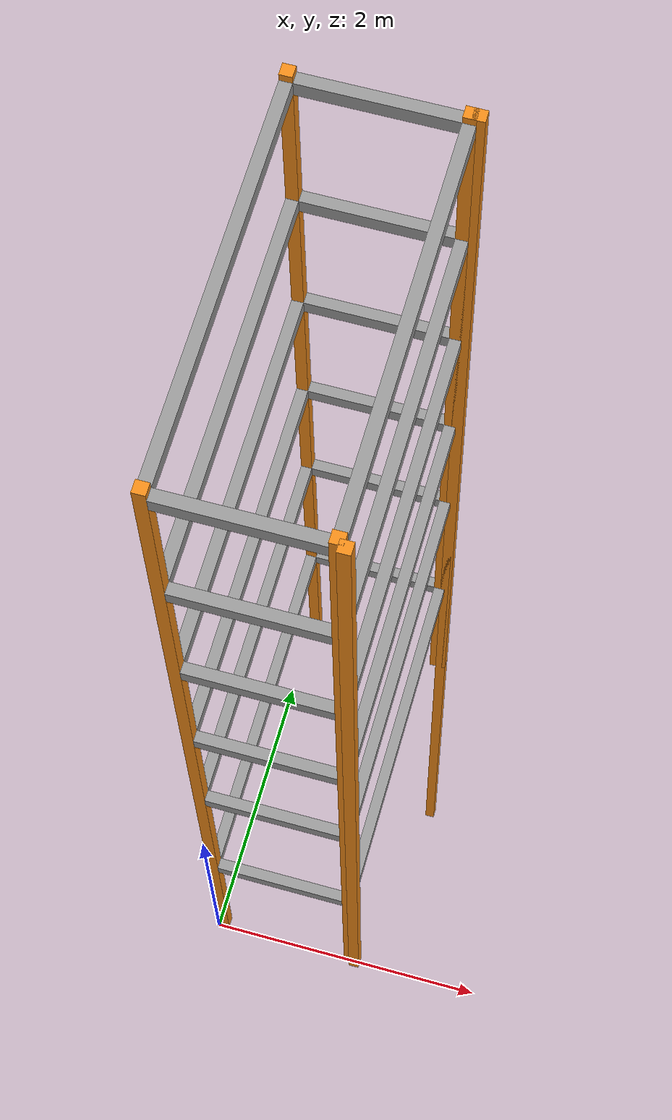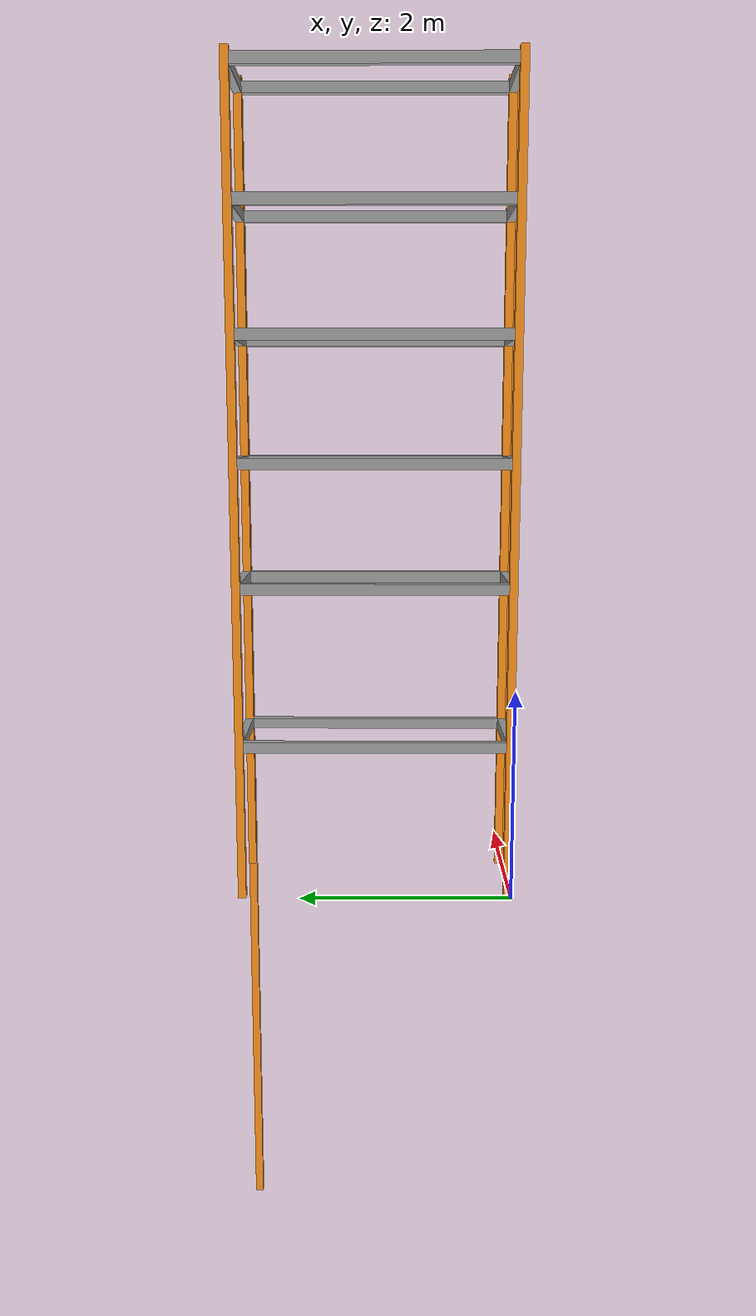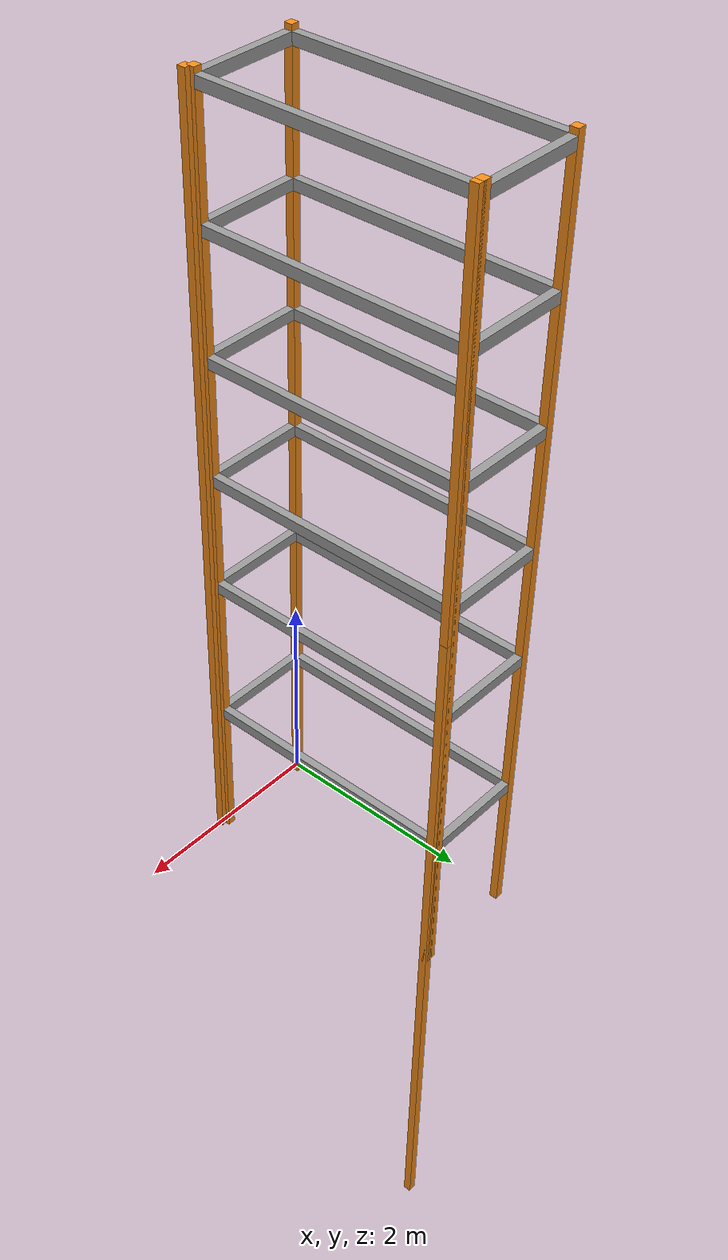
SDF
<?xml version="1.0" ?>
<sdf version="1.6">

  <model name="configurable_pallet_rack">
    <static>true</static>

    <link name="upright_front_right">

      <visual name="upright_front_right_visual">
        <pose>0.0381 0.0381 3.7592 0 0 0</pose>
        <geometry>
          <box>
            <size>0.0762 0.0762 7.5184</size>
          </box>
        </geometry>
        <material><script><name>Gazebo/Orange</name></script></material>
     </visual>

     <collision name="upright_front_right_collision">
        <pose>0.0381 0.0381 3.7592 0 0 0</pose>
        <geometry>
          <box>
             <size>0.0762 0.0762 7.5184</size>
          </box>
        </geometry>
				<surface>
        	<friction>
          	<ode>
            	<mu>100.0</mu>
            	<mu2>100.0</mu2>
          	</ode>
        	</friction>
      	</surface>
    </collision>

    </link>

    <link name="upright_front_left">

      <visual name="upright_front_left_visual">
        <pose>0.0381 2.5527 3.7592 0 0 0</pose>
        <geometry>
          <box>
            <size>0.0762 0.0762 7.5184</size>
          </box>
        </geometry>
        <material><script><name>Gazebo/Orange</name></script></material>
     </visual>

     <collision name="upright_front_left_collision">
        <pose>0.0381 2.5527 3.7592 0 0 0</pose>
        <geometry>
          <box>
             <size>0.0762 0.0762 7.5184</size>
          </box>
        </geometry>
				<surface>
        	<friction>
          	<ode>
            	<mu>100.0</mu>
            	<mu2>100.0</mu2>
          	</ode>
        	</friction>
      	</surface>
    </collision>

    </link>

<visual name="visual">
	<pose>0.0381 1.2954 4.064 0 0 0</pose>
        <geometry>
          <mesh>
            <uri>model://tote.dae</uri>
            <!-- Replace "your_mesh.dae" with the actual name of your mesh file -->
          </mesh>
        </geometry>
      </visual>

<geometry>
    <mesh><uri>model://tote.dae</uri></mesh>
</geometry>

    <link name="upright_rear_right">

      <visual name="upright_rear_right_visual">
        <pose>1.0287 0.0381 3.7592 0 0 0</pose>
        <geometry>
          <box>
            <size>0.0762 0.0762 7.5184</size>
          </box>
        </geometry>
        <material><script><name>Gazebo/Orange</name></script></material>
     </visual>

     <collision name="upright_rear_right_collision">
        <pose>1.0287 0.0381 3.7592 0 0 0</pose>
        <geometry>
          <box>
             <size>0.0762 0.0762 7.5184</size>
          </box>
        </geometry>
				<surface>
        	<friction>
          	<ode>
            	<mu>100.0</mu>
            	<mu2>100.0</mu2>
          	</ode>
        	</friction>
      	</surface>
    </collision>

    </link>

    <link name="upright_rear_left">

      <visual name="upright_rear_left_visual">
        <pose>1.0287 2.5527 3.7592 0 0 0</pose>
        <geometry>
          <box>
            <size>0.0762 0.0762 7.5184</size>
          </box>
        </geometry>
        <material><script><name>Gazebo/Orange</name></script></material>
     </visual>

     <collision name="upright_rear_left_collision">
        <pose>1.0287 2.5527 3.7592 0 0 0</pose>
        <geometry>
          <box>
             <size>0.0762 0.0762 7.5184</size>
          </box>
        </geometry>
				<surface>
        	<friction>
          	<ode>
            	<mu>100.0</mu>
            	<mu2>100.0</mu2>
          	</ode>
        	</friction>
      	</surface>
    </collision>

    </link>

     <link name="upright_front_right">
     <visual name="upright_front_right_visual">
        <pose>0.0381 0.0381 3.7592 0 0 0</pose>
        <geometry>
          <box>
            <size>0.0762 0.0762 7.5184</size>
          </box>
        </geometry>
        <material><script><name>Gazebo/Orange</name></script></material>
     </visual>

     <collision name="upright_front_right_collision">
        <pose>0.0381 0.0381 3.7592 0 0 0</pose>
        <geometry>
          <box>
             <size>0.0762 0.0762 7.5184</size>
          </box>
        </geometry>
				<surface>
        	<friction>
          	<ode>
            	<mu>100.0</mu>
            	<mu2>100.0</mu2>
          	</ode>
        	</friction>
      	</surface>
    </collision>

    </link>

  <link name="upright_front_right_parallel">

     </link>
  <link name="upright_front_left_parallel">

  <visual name="upright_front_left_visual">
        <pose>1.0762 2.5527 0 0 0 0</pose>
        <geometry>
          <box>
            <size>0.0762 0.0762 7.5184</size>
          </box>
        </geometry>
        <material><script><name>Gazebo/Orange</name></script></material>
     </visual>

     <collision name="upright_front_left_collision">
        <pose>1.0762 2.5527 0 0 0 0</pose>
        <geometry>
          <box>
             <size>0.0762 0.0762 7.5184</size>
          </box>
        </geometry>
				<surface>
        	<friction>
          	<ode>
            	<mu>100.0</mu>
            	<mu2>100.0</mu2>
          	</ode>
        	</friction>
      	</surface>
    </collision>

    </link>

  <link name="upright_rear_right_parallel">

  <visual name="upright_rear_right_visual">
        <pose>1.0762 0 3.7592 0 0 0</pose>
        <geometry>
          <box>
            <size>0.0762 0.0762 7.5184</size>
          </box>
        </geometry>
        <material><script><name>Gazebo/Orange</name></script></material>
     </visual>

     <collision name="upright_rear_right_collision">
        <pose>1.0762 0 3.7592 0 0 0</pose>
        <geometry>
          <box>
             <size>0.0762 0.0762 7.5184</size>
          </box>
        </geometry>
				<surface>
        	<friction>
          	<ode>
            	<mu>100.0</mu>
            	<mu2>100.0</mu2>
          	</ode>
        	</friction>
      	</surface>
    </collision>

    </link>
  <link name="upright_rear_left_parallel">

  <visual name="upright_rear_left_visual">
        <pose>1.0762 2.5527 3.7592 0 0 0</pose>
        <geometry>
          <box>
            <size>0.0762 0.0762 7.5184</size>
          </box>
        </geometry>
        <material><script><name>Gazebo/Orange</name></script></material>
     </visual>

     <collision name="upright_rear_left_collision">
        <pose>1.0762 2.5527 3.7592 0 0 0</pose>
        <geometry>
          <box>
             <size>0.0762 0.0762 7.5184</size>
          </box>
        </geometry>
				<surface>
        	<friction>
          	<ode>
            	<mu>100.0</mu>
            	<mu2>100.0</mu2>
          	</ode>
        	</friction>
      	</surface>
    </collision>

    </link>

    <link name="shelf_0_front_crossbar">

      <visual name="shelf_0_front_crossbar_visual">
        <pose>0.0381 1.2954 1.4732 0 0 0</pose>
        <geometry>
          <box>
            <size>0.0762 2.4384 0.1016</size>
          </box>
        </geometry>
        <material><script><name>Gazebo/Gray</name></script></material>
     </visual>

    <visual name="shelf_0_rear_crossbar_visual">
      <pose>1.0287 1.2954 1.4732 0 0 0</pose>
      <geometry>
        <box>
          <size>0.0762 2.4384 0.1016</size>
        </box>
      </geometry>
      <material><script><name>Gazebo/Gray</name></script></material>
    </visual>

    <visual name="shelf_0_right_crossbar_visual">
      <pose>0.5334 0.0381 1.4732 0 0 0</pose>
      <geometry>
        <box>
          <size>0.9144 0.0762 0.1016</size>
        </box>
      </geometry>
      <material><script><name>Gazebo/Gray</name></script></material>
    </visual>

    <visual name="shelf_0_left_crossbar_visual">
      <pose>0.5334 2.5527 1.4732 0 0 0</pose>
      <geometry>
        <box>
          <size>0.9144 0.0762 0.1016</size>
        </box>
      </geometry>
      <material><script><name>Gazebo/Gray</name></script></material>
    </visual>

     <collision name="shelf_0_collision">
        <pose>0.5334 1.2954 1.4732 0 0 0</pose>
        <geometry>
          <box>
            <!-- Solid collision -->
             <size>1.0668 2.4384 0.1016</size>
          </box>
        </geometry>
				<surface>
        	<friction>
          	<ode>
            	<mu>100.0</mu>
            	<mu2>100.0</mu2>
          	</ode>
        	</friction>
      	</surface>
    </collision>

    </link>

    <link name="shelf_1_front_crossbar">

      <visual name="shelf_1_front_crossbar_visual">
        <pose>0.0381 1.2954 2.9464 0 0 0</pose>
        <geometry>
          <box>
            <size>0.0762 2.4384 0.1016</size>
          </box>
        </geometry>
        <material><script><name>Gazebo/Gray</name></script></material>
     </visual>

    <visual name="shelf_1_rear_crossbar_visual">
      <pose>1.0287 1.2954 2.9464 0 0 0</pose>
      <geometry>
        <box>
          <size>0.0762 2.4384 0.1016</size>
        </box>
      </geometry>
      <material><script><name>Gazebo/Gray</name></script></material>
    </visual>

    <visual name="shelf_1_right_crossbar_visual">
      <pose>0.5334 0.0381 2.9464 0 0 0</pose>
      <geometry>
        <box>
          <size>0.9144 0.0762 0.1016</size>
        </box>
      </geometry>
      <material><script><name>Gazebo/Gray</name></script></material>
    </visual>

    <visual name="shelf_1_left_crossbar_visual">
      <pose>0.5334 2.5527 2.9464 0 0 0</pose>
      <geometry>
        <box>
          <size>0.9144 0.0762 0.1016</size>
        </box>
      </geometry>
      <material><script><name>Gazebo/Gray</name></script></material>
    </visual>

     <collision name="shelf_1_collision">
        <pose>0.5334 1.2954 2.9464 0 0 0</pose>
        <geometry>
          <box>
            <!-- Solid collision -->
             <size>1.0668 2.4384 0.1016</size>
          </box>
        </geometry>
				<surface>
        	<friction>
          	<ode>
            	<mu>100.0</mu>
            	<mu2>100.0</mu2>
          	</ode>
        	</friction>
      	</surface>
    </collision>

    </link>

    <link name="shelf_2_front_crossbar">

      <visual name="shelf_2_front_crossbar_visual">
        <pose>0.0381 1.2954 4.064 0 0 0</pose>
        <geometry>
          <box>
            <size>0.0762 2.4384 0.1016</size>
          </box>
        </geometry>
        <material><script><name>Gazebo/Gray</name></script></material>
     </visual>

    <visual name="shelf_2_rear_crossbar_visual">
      <pose>1.0287 1.2954 4.064 0 0 0</pose>
      <geometry>
        <box>
          <size>0.0762 2.4384 0.1016</size>
        </box>
      </geometry>
      <material><script><name>Gazebo/Gray</name></script></material>
    </visual>

    <visual name="shelf_2_right_crossbar_visual">
      <pose>0.5334 0.0381 4.064 0 0 0</pose>
      <geometry>
        <box>
          <size>0.9144 0.0762 0.1016</size>
        </box>
      </geometry>
      <material><script><name>Gazebo/Gray</name></script></material>
    </visual>

    <visual name="shelf_2_left_crossbar_visual">
      <pose>0.5334 2.5527 4.064 0 0 0</pose>
      <geometry>
        <box>
          <size>0.9144 0.0762 0.1016</size>
        </box>
      </geometry>
      <material><script><name>Gazebo/Gray</name></script></material>
    </visual>

     <collision name="shelf_2_collision">
        <pose>0.5334 1.2954 4.064 0 0 0</pose>
        <geometry>
          <box>
            <!-- Solid collision -->
             <size>1.0668 2.4384 0.1016</size>
          </box>
        </geometry>
				<surface>
        	<friction>
          	<ode>
            	<mu>100.0</mu>
            	<mu2>100.0</mu2>
          	</ode>
        	</friction>
      	</surface>
    </collision>

    </link>

    <link name="shelf_3_front_crossbar">

      <visual name="shelf_3_front_crossbar_visual">
        <pose>0.0381 1.2954 5.1816 0 0 0</pose>
        <geometry>
          <box>
            <size>0.0762 2.4384 0.1016</size>
          </box>
        </geometry>
        <material><script><name>Gazebo/Gray</name></script></material>
     </visual>

    <visual name="shelf_3_rear_crossbar_visual">
      <pose>1.0287 1.2954 5.1816 0 0 0</pose>
      <geometry>
        <box>
          <size>0.0762 2.4384 0.1016</size>
        </box>
      </geometry>
      <material><script><name>Gazebo/Gray</name></script></material>
    </visual>

    <visual name="shelf_3_right_crossbar_visual">
      <pose>0.5334 0.0381 5.1816 0 0 0</pose>
      <geometry>
        <box>
          <size>0.9144 0.0762 0.1016</size>
        </box>
      </geometry>
      <material><script><name>Gazebo/Gray</name></script></material>
    </visual>

    <visual name="shelf_3_left_crossbar_visual">
      <pose>0.5334 2.5527 5.1816 0 0 0</pose>
      <geometry>
        <box>
          <size>0.9144 0.0762 0.1016</size>
        </box>
      </geometry>
      <material><script><name>Gazebo/Gray</name></script></material>
    </visual>

     <collision name="shelf_3_collision">
        <pose>0.5334 1.2954 5.1816 0 0 0</pose>
        <geometry>
          <box>
            <!-- Solid collision -->
             <size>1.0668 2.4384 0.1016</size>
          </box>
        </geometry>
				<surface>
        	<friction>
          	<ode>
            	<mu>100.0</mu>
            	<mu2>100.0</mu2>
          	</ode>
        	</friction>
      	</surface>
    </collision>

    </link>

    <link name="shelf_4_front_crossbar">

      <visual name="shelf_4_front_crossbar_visual">
        <pose>0.0381 1.2954 6.2992 0 0 0</pose>
        <geometry>
          <box>
            <size>0.0762 2.4384 0.1016</size>
          </box>
        </geometry>
        <material><script><name>Gazebo/Gray</name></script></material>
     </visual>

    <visual name="shelf_4_rear_crossbar_visual">
      <pose>1.0287 1.2954 6.2992 0 0 0</pose>
      <geometry>
        <box>
          <size>0.0762 2.4384 0.1016</size>
        </box>
      </geometry>
      <material><script><name>Gazebo/Gray</name></script></material>
    </visual>

    <visual name="shelf_4_right_crossbar_visual">
      <pose>0.5334 0.0381 6.2992 0 0 0</pose>
      <geometry>
        <box>
          <size>0.9144 0.0762 0.1016</size>
        </box>
      </geometry>
      <material><script><name>Gazebo/Gray</name></script></material>
    </visual>

    <visual name="shelf_4_left_crossbar_visual">
      <pose>0.5334 2.5527 6.2992 0 0 0</pose>
      <geometry>
        <box>
          <size>0.9144 0.0762 0.1016</size>
        </box>
      </geometry>
      <material><script><name>Gazebo/Gray</name></script></material>
    </visual>

     <collision name="shelf_4_collision">
        <pose>0.5334 1.2954 6.2992 0 0 0</pose>
        <geometry>
          <box>
            <!-- Solid collision -->
             <size>1.0668 2.4384 0.1016</size>
          </box>
        </geometry>
				<surface>
        	<friction>
          	<ode>
            	<mu>100.0</mu>
            	<mu2>100.0</mu2>
          	</ode>
        	</friction>
      	</surface>
    </collision>

    </link>

    <link name="shelf_5_front_crossbar">

      <visual name="shelf_5_front_crossbar_visual">
        <pose>0.0381 1.2954 7.4168 0 0 0</pose>
        <geometry>
          <box>
            <size>0.0762 2.4384 0.1016</size>
          </box>
        </geometry>
        <material><script><name>Gazebo/Gray</name></script></material>
     </visual>

    <visual name="shelf_5_rear_crossbar_visual">
      <pose>1.0287 1.2954 7.4168 0 0 0</pose>
      <geometry>
        <box>
          <size>0.0762 2.4384 0.1016</size>
        </box>
      </geometry>
      <material><script><name>Gazebo/Gray</name></script></material>
    </visual>

    <visual name="shelf_5_right_crossbar_visual">
      <pose>0.5334 0.0381 7.4168 0 0 0</pose>
      <geometry>
        <box>
          <size>0.9144 0.0762 0.1016</size>
        </box>
      </geometry>
      <material><script><name>Gazebo/Gray</name></script></material>
    </visual>

    <visual name="shelf_5_left_crossbar_visual">
      <pose>0.5334 2.5527 7.4168 0 0 0</pose>
      <geometry>
        <box>
          <size>0.9144 0.0762 0.1016</size>
        </box>
      </geometry>
      <material><script><name>Gazebo/Gray</name></script></material>
    </visual>

     <collision name="shelf_5_collision">
        <pose>0.5334 1.2954 7.4168 0 0 0</pose>
        <geometry>
          <box>
            <!-- Solid collision -->
             <size>1.0668 2.4384 0.1016</size>
          </box>
        </geometry>
				<surface>
        	<friction>
          	<ode>
            	<mu>100.0</mu>
            	<mu2>100.0</mu2>
          	</ode>
        	</friction>
      	</surface>
    </collision>

    </link>

  </model>

</sdf>
